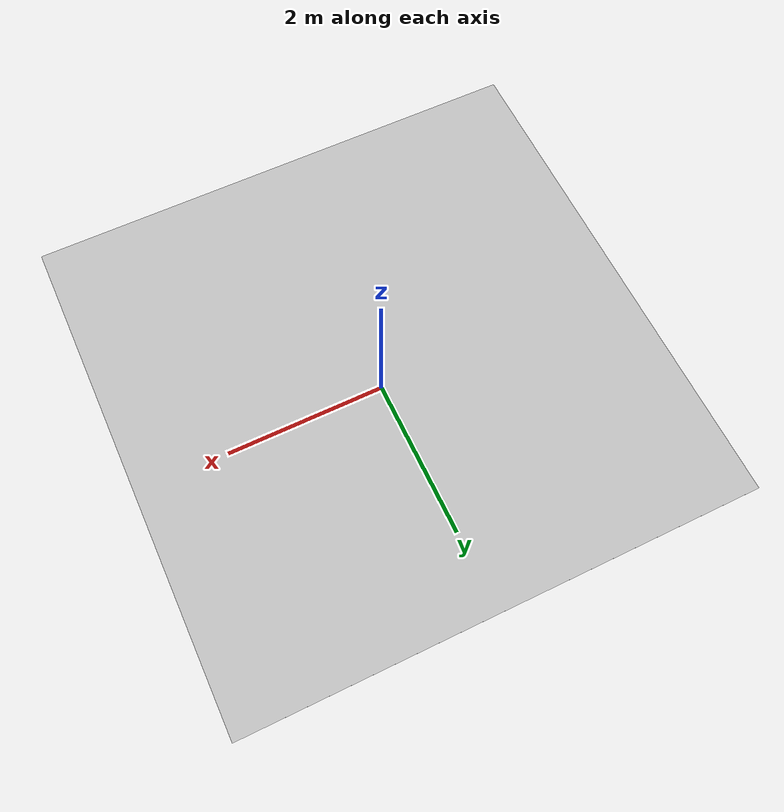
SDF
<?xml version="1.0"?>
<sdf version="1.5">
    <model name="carte">
        <pose>0 0 0.61 0 0 0</pose>
        <static>true</static>
        <link name="carte_link">
            <pose>0 0 1e-3 0 0 1.5707963267948966</pose>
            <visual name="visual_carte">
                <cast_shadows>false</cast_shadows>
                <geometry><box><size> 6.25 6.25 1e-3</size></box></geometry>
                <material>
                    <script>
                        <uri>model://carte/materials/scripts</uri>
                        <uri>model://carte/materials/textures</uri>
                        <name>carte/carte</name>
                    </script>
                </material>
            </visual>
        </link>
    </model>
</sdf>
